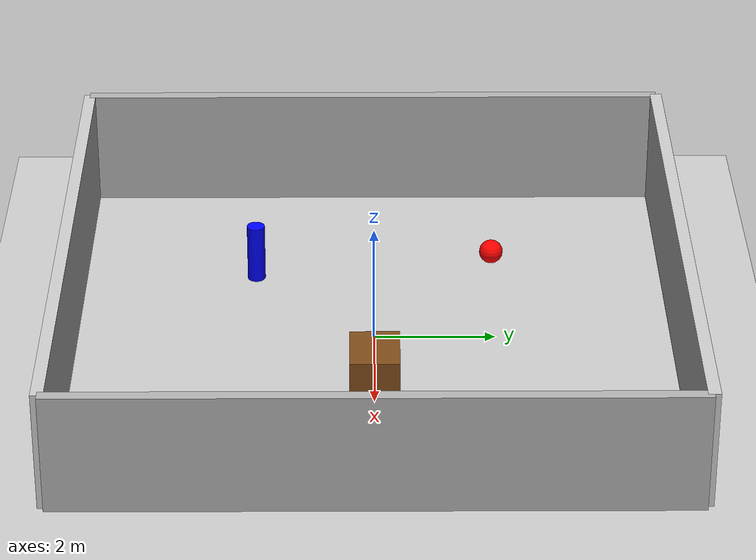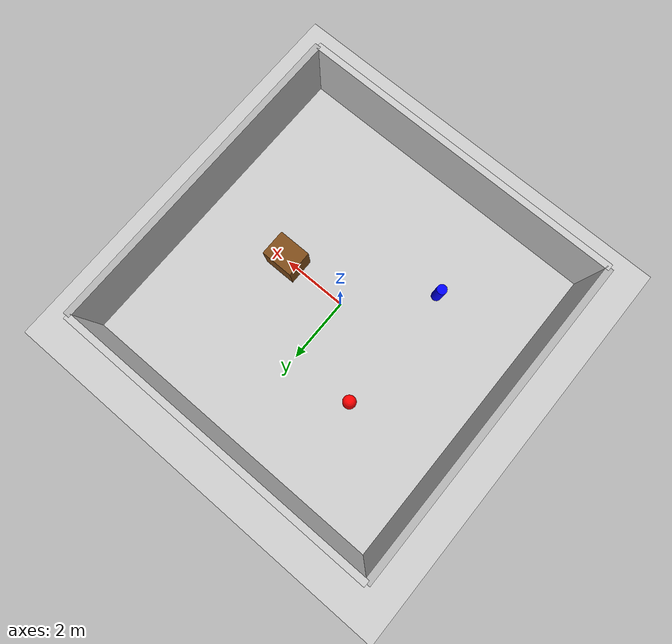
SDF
<?xml version="1.0" ?>
<sdf version="1.6">
  <world name="simple_room">
    <!-- Include the default Gazebo environment -->
    <include>
      <uri>model://ground_plane</uri>
    </include>

    <include>
      <uri>model://sun</uri>
    </include>

    <!-- Create a simple room with walls -->
    <!-- Wall 1: Front wall -->
    <model name="wall_front">
      <pose>0 5 1 0 0 0</pose>
      <link name="link">
        <collision name="collision">
          <geometry>
            <box>
              <size>10 0.2 2</size>
            </box>
          </geometry>
        </collision>
        <visual name="visual">
          <geometry>
            <box>
              <size>10 0.2 2</size>
            </box>
          </geometry>
          <material>
            <ambient>0.8 0.8 0.8 1</ambient>
            <diffuse>0.8 0.8 0.8 1</diffuse>
            <specular>0.1 0.1 0.1 1</specular>
          </material>
        </visual>
        <inertial>
          <mass>100</mass>
          <inertia>
            <ixx>1</ixx>
            <ixy>0</ixy>
            <ixz>0</ixz>
            <iyy>1</iyy>
            <iyz>0</iyz>
            <izz>1</izz>
          </inertia>
        </inertial>
      </link>
    </model>

    <!-- Wall 2: Back wall -->
    <model name="wall_back">
      <pose>0 -5 1 0 0 3.14159</pose>
      <link name="link">
        <collision name="collision">
          <geometry>
            <box>
              <size>10 0.2 2</size>
            </box>
          </geometry>
        </collision>
        <visual name="visual">
          <geometry>
            <box>
              <size>10 0.2 2</size>
            </box>
          </geometry>
          <material>
            <ambient>0.8 0.8 0.8 1</ambient>
            <diffuse>0.8 0.8 0.8 1</diffuse>
            <specular>0.1 0.1 0.1 1</specular>
          </material>
        </visual>
        <inertial>
          <mass>100</mass>
          <inertia>
            <ixx>1</ixx>
            <ixy>0</ixy>
            <ixz>0</ixz>
            <iyy>1</iyy>
            <iyz>0</iyz>
            <izz>1</izz>
          </inertia>
        </inertial>
      </link>
    </model>

    <!-- Wall 3: Left wall -->
    <model name="wall_left">
      <pose>-5 0 1 0 0 1.5708</pose>
      <link name="link">
        <collision name="collision">
          <geometry>
            <box>
              <size>10 0.2 2</size>
            </box>
          </geometry>
        </collision>
        <visual name="visual">
          <geometry>
            <box>
              <size>10 0.2 2</size>
            </box>
          </geometry>
          <material>
            <ambient>0.7 0.7 0.7 1</ambient>
            <diffuse>0.7 0.7 0.7 1</diffuse>
            <specular>0.1 0.1 0.1 1</specular>
          </material>
        </visual>
        <inertial>
          <mass>100</mass>
          <inertia>
            <ixx>1</ixx>
            <ixy>0</ixy>
            <ixz>0</ixz>
            <iyy>1</iyy>
            <iyz>0</iyz>
            <izz>1</izz>
          </inertia>
        </inertial>
      </link>
    </model>

    <!-- Wall 4: Right wall -->
    <model name="wall_right">
      <pose>5 0 1 0 0 -1.5708</pose>
      <link name="link">
        <collision name="collision">
          <geometry>
            <box>
              <size>10 0.2 2</size>
            </box>
          </geometry>
        </collision>
        <visual name="visual">
          <geometry>
            <box>
              <size>10 0.2 2</size>
            </box>
          </geometry>
          <material>
            <ambient>0.7 0.7 0.7 1</ambient>
            <diffuse>0.7 0.7 0.7 1</diffuse>
            <specular>0.1 0.1 0.1 1</specular>
          </material>
        </visual>
        <inertial>
          <mass>100</mass>
          <inertia>
            <ixx>1</ixx>
            <ixy>0</ixy>
            <ixz>0</ixz>
            <iyy>1</iyy>
            <iyz>0</iyz>
            <izz>1</izz>
          </inertia>
        </inertial>
      </link>
    </model>

    <!-- Add a simple object for the robot to interact with -->
    <model name="table">
      <pose>2 0 0.5 0 0 0</pose>
      <link name="link">
        <collision name="collision">
          <geometry>
            <box>
              <size>1 0.8 1</size>
            </box>
          </geometry>
        </collision>
        <visual name="visual">
          <geometry>
            <box>
              <size>1 0.8 1</size>
            </box>
          </geometry>
          <material>
            <ambient>0.5 0.3 0.1 1</ambient>
            <diffuse>0.5 0.3 0.1 1</diffuse>
            <specular>0.2 0.2 0.2 1</specular>
          </material>
        </visual>
        <inertial>
          <mass>10</mass>
          <inertia>
            <ixx>1</ixx>
            <ixy>0</ixy>
            <ixz>0</ixz>
            <iyy>1</iyy>
            <iyz>0</iyz>
            <izz>1</izz>
          </inertia>
        </inertial>
      </link>
    </model>

    <!-- Add a sphere for the robot to detect -->
    <model name="red_sphere">
      <pose>-2 2 0.5 0 0 0</pose>
      <link name="link">
        <collision name="collision">
          <geometry>
            <sphere>
              <radius>0.2</radius>
            </sphere>
          </geometry>
        </collision>
        <visual name="visual">
          <geometry>
            <sphere>
              <radius>0.2</radius>
            </sphere>
          </geometry>
          <material>
            <ambient>1 0 0 1</ambient>
            <diffuse>1 0 0 1</diffuse>
            <specular>0.5 0.5 0.5 1</specular>
          </material>
        </visual>
        <inertial>
          <mass>1</mass>
          <inertia>
            <ixx>0.008</ixx>
            <ixy>0</ixy>
            <ixz>0</ixz>
            <iyy>0.008</iyy>
            <iyz>0</iyz>
            <izz>0.008</izz>
          </inertia>
        </inertial>
      </link>
    </model>

    <!-- Add a cylinder for the robot to detect -->
    <model name="blue_cylinder">
      <pose>-2 -2 0.5 0 0 0</pose>
      <link name="link">
        <collision name="collision">
          <geometry>
            <cylinder>
              <radius>0.15</radius>
              <length>1.0</length>
            </cylinder>
          </geometry>
        </collision>
        <visual name="visual">
          <geometry>
            <cylinder>
              <radius>0.15</radius>
              <length>1.0</length>
            </cylinder>
          </geometry>
          <material>
            <ambient>0 0 1 1</ambient>
            <diffuse>0 0 1 1</diffuse>
            <specular>0.5 0.5 0.5 1</specular>
          </material>
        </visual>
        <inertial>
          <mass>1</mass>
          <inertia>
            <ixx>0.018125</ixx>
            <ixy>0</ixy>
            <ixz>0</ixz>
            <iyy>0.018125</iyy>
            <iyz>0</iyz>
            <izz>0.01125</izz>
          </inertia>
        </inertial>
      </link>
    </model>

    <!-- Physics engine configuration -->
    <physics name="default_physics" type="ode">
      <max_step_size>0.001</max_step_size>
      <real_time_factor>1</real_time_factor>
      <real_time_update_rate>1000</real_time_update_rate>
      <gravity>0 0 -9.8</gravity>
    </physics>

    <!-- Scene settings -->
    <scene>
      <ambient>0.4 0.4 0.4 1</ambient>
      <background>0.7 0.7 0.7 1</background>
      <shadows>true</shadows>
    </scene>
  </world>
</sdf>
